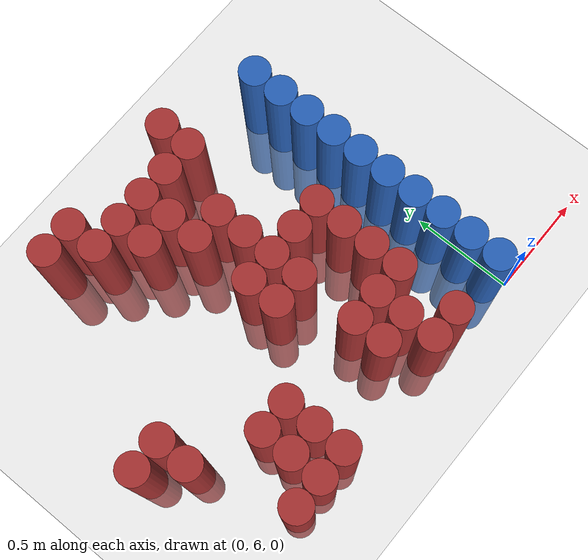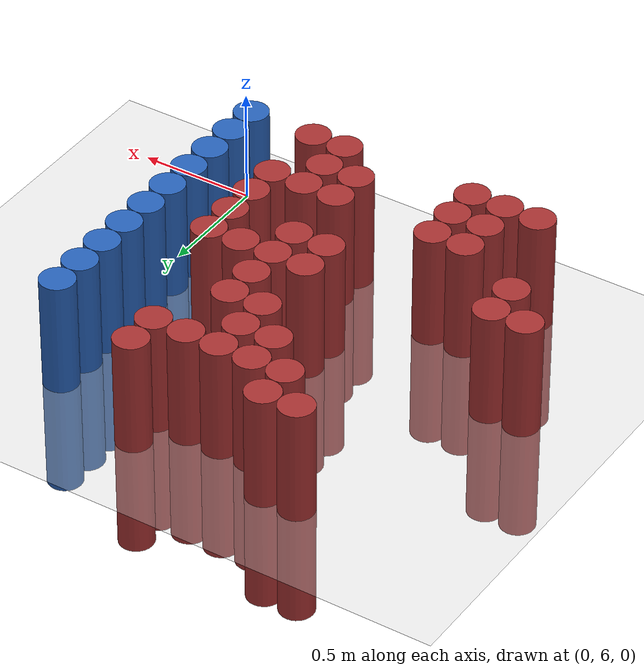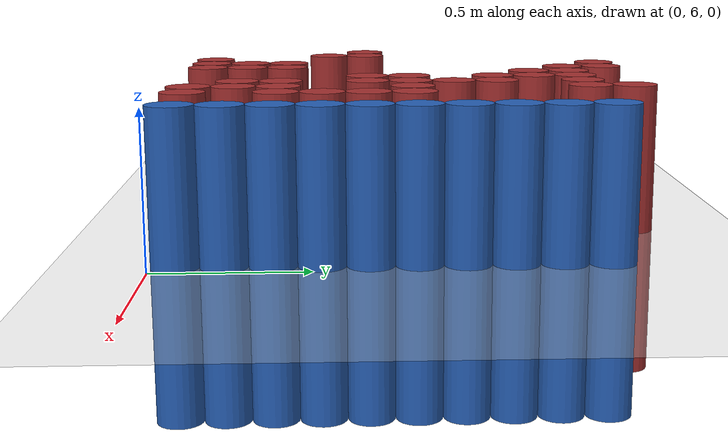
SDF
<sdf version="1.6">
 <world name="default">
  <model name="ground_plane">
   <static>1</static>
   <link name="link">
    <collision name="collision">
     <geometry><plane><normal>0 0 1</normal><size>100 100</size></plane></geometry>
     <surface><friction><ode><mu>100</mu><mu2>50</mu2></ode></friction></surface>
    </collision>
    <visual name="visual">
     <cast_shadows>0</cast_shadows>
     <geometry><plane><normal>0 0 1</normal><size>100 100</size></plane></geometry>
     <material>
      <script><uri>file://media/materials/scripts/gazebo.material</uri><name>Gazebo/Grey</name></script>
     </material>
    </visual>
   </link>
  </model>
  <model name="unit_cylinder_217">
   <static>1</static>
   <pose>-1.725000 6.675000 0.000000 0.000000 0.000000 0.000000</pose>
   <link name="link">
    <inertial>
     <mass>1</mass>
     <inertia><ixx>0.145833</ixx><ixy>0</ixy><ixz>0</ixz><iyy>0.145833</iyy><iyz>0</iyz><izz>0.125</izz></inertia>
    </inertial>
    <collision name="collision">
     <geometry><cylinder><radius>0.075000</radius><length>1</length></cylinder></geometry>
    </collision>
    <visual name="visual">
     <geometry><cylinder><radius>0.075000</radius><length>1</length></cylinder></geometry>
     <material>
      <ambient>0.648000 0.192000 0.192000 1</ambient>
      <diffuse>0.648000 0.192000 0.192000 1</diffuse>
     </material>
     <material>
      <script><name>Gazebo/Grey</name><uri>file://media/materials/scripts/gazebo.material</uri></script>
     </material>
    </visual>
   </link>
  </model>
  <model name="unit_cylinder_220">
   <static>1</static>
   <pose>-1.575000 6.525000 0.000000 0.000000 0.000000 0.000000</pose>
   <link name="link">
    <inertial>
     <mass>1</mass>
     <inertia><ixx>0.145833</ixx><ixy>0</ixy><ixz>0</ixz><iyy>0.145833</iyy><iyz>0</iyz><izz>0.125</izz></inertia>
    </inertial>
    <collision name="collision">
     <geometry><cylinder><radius>0.075000</radius><length>1</length></cylinder></geometry>
    </collision>
    <visual name="visual">
     <geometry><cylinder><radius>0.075000</radius><length>1</length></cylinder></geometry>
     <material>
      <ambient>0.648000 0.192000 0.192000 1</ambient>
      <diffuse>0.648000 0.192000 0.192000 1</diffuse>
     </material>
     <material>
      <script><name>Gazebo/Grey</name><uri>file://media/materials/scripts/gazebo.material</uri></script>
     </material>
    </visual>
   </link>
  </model>
  <model name="unit_cylinder_221">
   <static>1</static>
   <pose>-1.575000 6.675000 0.000000 0.000000 0.000000 0.000000</pose>
   <link name="link">
    <inertial>
     <mass>1</mass>
     <inertia><ixx>0.145833</ixx><ixy>0</ixy><ixz>0</ixz><iyy>0.145833</iyy><iyz>0</iyz><izz>0.125</izz></inertia>
    </inertial>
    <collision name="collision">
     <geometry><cylinder><radius>0.075000</radius><length>1</length></cylinder></geometry>
    </collision>
    <visual name="visual">
     <geometry><cylinder><radius>0.075000</radius><length>1</length></cylinder></geometry>
     <material>
      <ambient>0.648000 0.192000 0.192000 1</ambient>
      <diffuse>0.648000 0.192000 0.192000 1</diffuse>
     </material>
     <material>
      <script><name>Gazebo/Grey</name><uri>file://media/materials/scripts/gazebo.material</uri></script>
     </material>
    </visual>
   </link>
  </model>
  <model name="unit_cylinder_223">
   <static>1</static>
   <pose>-1.425000 6.075000 0.000000 0.000000 0.000000 0.000000</pose>
   <link name="link">
    <inertial>
     <mass>1</mass>
     <inertia><ixx>0.145833</ixx><ixy>0</ixy><ixz>0</ixz><iyy>0.145833</iyy><iyz>0</iyz><izz>0.125</izz></inertia>
    </inertial>
    <collision name="collision">
     <geometry><cylinder><radius>0.075000</radius><length>1</length></cylinder></geometry>
    </collision>
    <visual name="visual">
     <geometry><cylinder><radius>0.075000</radius><length>1</length></cylinder></geometry>
     <material>
      <ambient>0.648000 0.192000 0.192000 1</ambient>
      <diffuse>0.648000 0.192000 0.192000 1</diffuse>
     </material>
     <material>
      <script><name>Gazebo/Grey</name><uri>file://media/materials/scripts/gazebo.material</uri></script>
     </material>
    </visual>
   </link>
  </model>
  <model name="unit_cylinder_230">
   <static>1</static>
   <pose>-1.275000 6.075000 0.000000 0.000000 0.000000 0.000000</pose>
   <link name="link">
    <inertial>
     <mass>1</mass>
     <inertia><ixx>0.145833</ixx><ixy>0</ixy><ixz>0</ixz><iyy>0.145833</iyy><iyz>0</iyz><izz>0.125</izz></inertia>
    </inertial>
    <collision name="collision">
     <geometry><cylinder><radius>0.075000</radius><length>1</length></cylinder></geometry>
    </collision>
    <visual name="visual">
     <geometry><cylinder><radius>0.075000</radius><length>1</length></cylinder></geometry>
     <material>
      <ambient>0.648000 0.192000 0.192000 1</ambient>
      <diffuse>0.648000 0.192000 0.192000 1</diffuse>
     </material>
     <material>
      <script><name>Gazebo/Grey</name><uri>file://media/materials/scripts/gazebo.material</uri></script>
     </material>
    </visual>
   </link>
  </model>
  <model name="unit_cylinder_231">
   <static>1</static>
   <pose>-1.275000 6.225000 0.000000 0.000000 0.000000 0.000000</pose>
   <link name="link">
    <inertial>
     <mass>1</mass>
     <inertia><ixx>0.145833</ixx><ixy>0</ixy><ixz>0</ixz><iyy>0.145833</iyy><iyz>0</iyz><izz>0.125</izz></inertia>
    </inertial>
    <collision name="collision">
     <geometry><cylinder><radius>0.075000</radius><length>1</length></cylinder></geometry>
    </collision>
    <visual name="visual">
     <geometry><cylinder><radius>0.075000</radius><length>1</length></cylinder></geometry>
     <material>
      <ambient>0.648000 0.192000 0.192000 1</ambient>
      <diffuse>0.648000 0.192000 0.192000 1</diffuse>
     </material>
     <material>
      <script><name>Gazebo/Grey</name><uri>file://media/materials/scripts/gazebo.material</uri></script>
     </material>
    </visual>
   </link>
  </model>
  <model name="unit_cylinder_232">
   <static>1</static>
   <pose>-1.275000 6.375000 0.000000 0.000000 0.000000 0.000000</pose>
   <link name="link">
    <inertial>
     <mass>1</mass>
     <inertia><ixx>0.145833</ixx><ixy>0</ixy><ixz>0</ixz><iyy>0.145833</iyy><iyz>0</iyz><izz>0.125</izz></inertia>
    </inertial>
    <collision name="collision">
     <geometry><cylinder><radius>0.075000</radius><length>1</length></cylinder></geometry>
    </collision>
    <visual name="visual">
     <geometry><cylinder><radius>0.075000</radius><length>1</length></cylinder></geometry>
     <material>
      <ambient>0.648000 0.192000 0.192000 1</ambient>
      <diffuse>0.648000 0.192000 0.192000 1</diffuse>
     </material>
     <material>
      <script><name>Gazebo/Grey</name><uri>file://media/materials/scripts/gazebo.material</uri></script>
     </material>
    </visual>
   </link>
  </model>
  <model name="unit_cylinder_233">
   <static>1</static>
   <pose>-1.275000 7.575000 0.000000 0.000000 0.000000 0.000000</pose>
   <link name="link">
    <inertial>
     <mass>1</mass>
     <inertia><ixx>0.145833</ixx><ixy>0</ixy><ixz>0</ixz><iyy>0.145833</iyy><iyz>0</iyz><izz>0.125</izz></inertia>
    </inertial>
    <collision name="collision">
     <geometry><cylinder><radius>0.075000</radius><length>1</length></cylinder></geometry>
    </collision>
    <visual name="visual">
     <geometry><cylinder><radius>0.075000</radius><length>1</length></cylinder></geometry>
     <material>
      <ambient>0.648000 0.192000 0.192000 1</ambient>
      <diffuse>0.648000 0.192000 0.192000 1</diffuse>
     </material>
     <material>
      <script><name>Gazebo/Grey</name><uri>file://media/materials/scripts/gazebo.material</uri></script>
     </material>
    </visual>
   </link>
  </model>
  <model name="unit_cylinder_238">
   <static>1</static>
   <pose>-1.125000 6.075000 0.000000 0.000000 0.000000 0.000000</pose>
   <link name="link">
    <inertial>
     <mass>1</mass>
     <inertia><ixx>0.145833</ixx><ixy>0</ixy><ixz>0</ixz><iyy>0.145833</iyy><iyz>0</iyz><izz>0.125</izz></inertia>
    </inertial>
    <collision name="collision">
     <geometry><cylinder><radius>0.075000</radius><length>1</length></cylinder></geometry>
    </collision>
    <visual name="visual">
     <geometry><cylinder><radius>0.075000</radius><length>1</length></cylinder></geometry>
     <material>
      <ambient>0.648000 0.192000 0.192000 1</ambient>
      <diffuse>0.648000 0.192000 0.192000 1</diffuse>
     </material>
     <material>
      <script><name>Gazebo/Grey</name><uri>file://media/materials/scripts/gazebo.material</uri></script>
     </material>
    </visual>
   </link>
  </model>
  <model name="unit_cylinder_239">
   <static>1</static>
   <pose>-1.125000 6.225000 0.000000 0.000000 0.000000 0.000000</pose>
   <link name="link">
    <inertial>
     <mass>1</mass>
     <inertia><ixx>0.145833</ixx><ixy>0</ixy><ixz>0</ixz><iyy>0.145833</iyy><iyz>0</iyz><izz>0.125</izz></inertia>
    </inertial>
    <collision name="collision">
     <geometry><cylinder><radius>0.075000</radius><length>1</length></cylinder></geometry>
    </collision>
    <visual name="visual">
     <geometry><cylinder><radius>0.075000</radius><length>1</length></cylinder></geometry>
     <material>
      <ambient>0.648000 0.192000 0.192000 1</ambient>
      <diffuse>0.648000 0.192000 0.192000 1</diffuse>
     </material>
     <material>
      <script><name>Gazebo/Grey</name><uri>file://media/materials/scripts/gazebo.material</uri></script>
     </material>
    </visual>
   </link>
  </model>
  <model name="unit_cylinder_240">
   <static>1</static>
   <pose>-1.125000 6.375000 0.000000 0.000000 0.000000 0.000000</pose>
   <link name="link">
    <inertial>
     <mass>1</mass>
     <inertia><ixx>0.145833</ixx><ixy>0</ixy><ixz>0</ixz><iyy>0.145833</iyy><iyz>0</iyz><izz>0.125</izz></inertia>
    </inertial>
    <collision name="collision">
     <geometry><cylinder><radius>0.075000</radius><length>1</length></cylinder></geometry>
    </collision>
    <visual name="visual">
     <geometry><cylinder><radius>0.075000</radius><length>1</length></cylinder></geometry>
     <material>
      <ambient>0.648000 0.192000 0.192000 1</ambient>
      <diffuse>0.648000 0.192000 0.192000 1</diffuse>
     </material>
     <material>
      <script><name>Gazebo/Grey</name><uri>file://media/materials/scripts/gazebo.material</uri></script>
     </material>
    </visual>
   </link>
  </model>
  <model name="unit_cylinder_241">
   <static>1</static>
   <pose>-1.125000 7.425000 0.000000 0.000000 0.000000 0.000000</pose>
   <link name="link">
    <inertial>
     <mass>1</mass>
     <inertia><ixx>0.145833</ixx><ixy>0</ixy><ixz>0</ixz><iyy>0.145833</iyy><iyz>0</iyz><izz>0.125</izz></inertia>
    </inertial>
    <collision name="collision">
     <geometry><cylinder><radius>0.075000</radius><length>1</length></cylinder></geometry>
    </collision>
    <visual name="visual">
     <geometry><cylinder><radius>0.075000</radius><length>1</length></cylinder></geometry>
     <material>
      <ambient>0.648000 0.192000 0.192000 1</ambient>
      <diffuse>0.648000 0.192000 0.192000 1</diffuse>
     </material>
     <material>
      <script><name>Gazebo/Grey</name><uri>file://media/materials/scripts/gazebo.material</uri></script>
     </material>
    </visual>
   </link>
  </model>
  <model name="unit_cylinder_242">
   <static>1</static>
   <pose>-1.125000 7.575000 0.000000 0.000000 0.000000 0.000000</pose>
   <link name="link">
    <inertial>
     <mass>1</mass>
     <inertia><ixx>0.145833</ixx><ixy>0</ixy><ixz>0</ixz><iyy>0.145833</iyy><iyz>0</iyz><izz>0.125</izz></inertia>
    </inertial>
    <collision name="collision">
     <geometry><cylinder><radius>0.075000</radius><length>1</length></cylinder></geometry>
    </collision>
    <visual name="visual">
     <geometry><cylinder><radius>0.075000</radius><length>1</length></cylinder></geometry>
     <material>
      <ambient>0.648000 0.192000 0.192000 1</ambient>
      <diffuse>0.648000 0.192000 0.192000 1</diffuse>
     </material>
     <material>
      <script><name>Gazebo/Grey</name><uri>file://media/materials/scripts/gazebo.material</uri></script>
     </material>
    </visual>
   </link>
  </model>
  <model name="unit_cylinder_251">
   <static>1</static>
   <pose>-0.975000 7.275000 0.000000 0.000000 0.000000 0.000000</pose>
   <link name="link">
    <inertial>
     <mass>1</mass>
     <inertia><ixx>0.145833</ixx><ixy>0</ixy><ixz>0</ixz><iyy>0.145833</iyy><iyz>0</iyz><izz>0.125</izz></inertia>
    </inertial>
    <collision name="collision">
     <geometry><cylinder><radius>0.075000</radius><length>1</length></cylinder></geometry>
    </collision>
    <visual name="visual">
     <geometry><cylinder><radius>0.075000</radius><length>1</length></cylinder></geometry>
     <material>
      <ambient>0.648000 0.192000 0.192000 1</ambient>
      <diffuse>0.648000 0.192000 0.192000 1</diffuse>
     </material>
     <material>
      <script><name>Gazebo/Grey</name><uri>file://media/materials/scripts/gazebo.material</uri></script>
     </material>
    </visual>
   </link>
  </model>
  <model name="unit_cylinder_252">
   <static>1</static>
   <pose>-0.975000 7.425000 0.000000 0.000000 0.000000 0.000000</pose>
   <link name="link">
    <inertial>
     <mass>1</mass>
     <inertia><ixx>0.145833</ixx><ixy>0</ixy><ixz>0</ixz><iyy>0.145833</iyy><iyz>0</iyz><izz>0.125</izz></inertia>
    </inertial>
    <collision name="collision">
     <geometry><cylinder><radius>0.075000</radius><length>1</length></cylinder></geometry>
    </collision>
    <visual name="visual">
     <geometry><cylinder><radius>0.075000</radius><length>1</length></cylinder></geometry>
     <material>
      <ambient>0.648000 0.192000 0.192000 1</ambient>
      <diffuse>0.648000 0.192000 0.192000 1</diffuse>
     </material>
     <material>
      <script><name>Gazebo/Grey</name><uri>file://media/materials/scripts/gazebo.material</uri></script>
     </material>
    </visual>
   </link>
  </model>
  <model name="unit_cylinder_257">
   <static>1</static>
   <pose>-0.825000 6.675000 0.000000 0.000000 0.000000 0.000000</pose>
   <link name="link">
    <inertial>
     <mass>1</mass>
     <inertia><ixx>0.145833</ixx><ixy>0</ixy><ixz>0</ixz><iyy>0.145833</iyy><iyz>0</iyz><izz>0.125</izz></inertia>
    </inertial>
    <collision name="collision">
     <geometry><cylinder><radius>0.075000</radius><length>1</length></cylinder></geometry>
    </collision>
    <visual name="visual">
     <geometry><cylinder><radius>0.075000</radius><length>1</length></cylinder></geometry>
     <material>
      <ambient>0.648000 0.192000 0.192000 1</ambient>
      <diffuse>0.648000 0.192000 0.192000 1</diffuse>
     </material>
     <material>
      <script><name>Gazebo/Grey</name><uri>file://media/materials/scripts/gazebo.material</uri></script>
     </material>
    </visual>
   </link>
  </model>
  <model name="unit_cylinder_258">
   <static>1</static>
   <pose>-0.825000 6.825000 0.000000 0.000000 0.000000 0.000000</pose>
   <link name="link">
    <inertial>
     <mass>1</mass>
     <inertia><ixx>0.145833</ixx><ixy>0</ixy><ixz>0</ixz><iyy>0.145833</iyy><iyz>0</iyz><izz>0.125</izz></inertia>
    </inertial>
    <collision name="collision">
     <geometry><cylinder><radius>0.075000</radius><length>1</length></cylinder></geometry>
    </collision>
    <visual name="visual">
     <geometry><cylinder><radius>0.075000</radius><length>1</length></cylinder></geometry>
     <material>
      <ambient>0.648000 0.192000 0.192000 1</ambient>
      <diffuse>0.648000 0.192000 0.192000 1</diffuse>
     </material>
     <material>
      <script><name>Gazebo/Grey</name><uri>file://media/materials/scripts/gazebo.material</uri></script>
     </material>
    </visual>
   </link>
  </model>
  <model name="unit_cylinder_259">
   <static>1</static>
   <pose>-0.825000 7.125000 0.000000 0.000000 0.000000 0.000000</pose>
   <link name="link">
    <inertial>
     <mass>1</mass>
     <inertia><ixx>0.145833</ixx><ixy>0</ixy><ixz>0</ixz><iyy>0.145833</iyy><iyz>0</iyz><izz>0.125</izz></inertia>
    </inertial>
    <collision name="collision">
     <geometry><cylinder><radius>0.075000</radius><length>1</length></cylinder></geometry>
    </collision>
    <visual name="visual">
     <geometry><cylinder><radius>0.075000</radius><length>1</length></cylinder></geometry>
     <material>
      <ambient>0.648000 0.192000 0.192000 1</ambient>
      <diffuse>0.648000 0.192000 0.192000 1</diffuse>
     </material>
     <material>
      <script><name>Gazebo/Grey</name><uri>file://media/materials/scripts/gazebo.material</uri></script>
     </material>
    </visual>
   </link>
  </model>
  <model name="unit_cylinder_260">
   <static>1</static>
   <pose>-0.825000 7.275000 0.000000 0.000000 0.000000 0.000000</pose>
   <link name="link">
    <inertial>
     <mass>1</mass>
     <inertia><ixx>0.145833</ixx><ixy>0</ixy><ixz>0</ixz><iyy>0.145833</iyy><iyz>0</iyz><izz>0.125</izz></inertia>
    </inertial>
    <collision name="collision">
     <geometry><cylinder><radius>0.075000</radius><length>1</length></cylinder></geometry>
    </collision>
    <visual name="visual">
     <geometry><cylinder><radius>0.075000</radius><length>1</length></cylinder></geometry>
     <material>
      <ambient>0.648000 0.192000 0.192000 1</ambient>
      <diffuse>0.648000 0.192000 0.192000 1</diffuse>
     </material>
     <material>
      <script><name>Gazebo/Grey</name><uri>file://media/materials/scripts/gazebo.material</uri></script>
     </material>
    </visual>
   </link>
  </model>
  <model name="unit_cylinder_261">
   <static>1</static>
   <pose>-0.825000 7.425000 0.000000 0.000000 0.000000 0.000000</pose>
   <link name="link">
    <inertial>
     <mass>1</mass>
     <inertia><ixx>0.145833</ixx><ixy>0</ixy><ixz>0</ixz><iyy>0.145833</iyy><iyz>0</iyz><izz>0.125</izz></inertia>
    </inertial>
    <collision name="collision">
     <geometry><cylinder><radius>0.075000</radius><length>1</length></cylinder></geometry>
    </collision>
    <visual name="visual">
     <geometry><cylinder><radius>0.075000</radius><length>1</length></cylinder></geometry>
     <material>
      <ambient>0.648000 0.192000 0.192000 1</ambient>
      <diffuse>0.648000 0.192000 0.192000 1</diffuse>
     </material>
     <material>
      <script><name>Gazebo/Grey</name><uri>file://media/materials/scripts/gazebo.material</uri></script>
     </material>
    </visual>
   </link>
  </model>
  <model name="unit_cylinder_264">
   <static>1</static>
   <pose>-0.675000 6.225000 0.000000 0.000000 0.000000 0.000000</pose>
   <link name="link">
    <inertial>
     <mass>1</mass>
     <inertia><ixx>0.145833</ixx><ixy>0</ixy><ixz>0</ixz><iyy>0.145833</iyy><iyz>0</iyz><izz>0.125</izz></inertia>
    </inertial>
    <collision name="collision">
     <geometry><cylinder><radius>0.075000</radius><length>1</length></cylinder></geometry>
    </collision>
    <visual name="visual">
     <geometry><cylinder><radius>0.075000</radius><length>1</length></cylinder></geometry>
     <material>
      <ambient>0.648000 0.192000 0.192000 1</ambient>
      <diffuse>0.648000 0.192000 0.192000 1</diffuse>
     </material>
     <material>
      <script><name>Gazebo/Grey</name><uri>file://media/materials/scripts/gazebo.material</uri></script>
     </material>
    </visual>
   </link>
  </model>
  <model name="unit_cylinder_265">
   <static>1</static>
   <pose>-0.675000 6.375000 0.000000 0.000000 0.000000 0.000000</pose>
   <link name="link">
    <inertial>
     <mass>1</mass>
     <inertia><ixx>0.145833</ixx><ixy>0</ixy><ixz>0</ixz><iyy>0.145833</iyy><iyz>0</iyz><izz>0.125</izz></inertia>
    </inertial>
    <collision name="collision">
     <geometry><cylinder><radius>0.075000</radius><length>1</length></cylinder></geometry>
    </collision>
    <visual name="visual">
     <geometry><cylinder><radius>0.075000</radius><length>1</length></cylinder></geometry>
     <material>
      <ambient>0.648000 0.192000 0.192000 1</ambient>
      <diffuse>0.648000 0.192000 0.192000 1</diffuse>
     </material>
     <material>
      <script><name>Gazebo/Grey</name><uri>file://media/materials/scripts/gazebo.material</uri></script>
     </material>
    </visual>
   </link>
  </model>
  <model name="unit_cylinder_266">
   <static>1</static>
   <pose>-0.675000 6.675000 0.000000 0.000000 0.000000 0.000000</pose>
   <link name="link">
    <inertial>
     <mass>1</mass>
     <inertia><ixx>0.145833</ixx><ixy>0</ixy><ixz>0</ixz><iyy>0.145833</iyy><iyz>0</iyz><izz>0.125</izz></inertia>
    </inertial>
    <collision name="collision">
     <geometry><cylinder><radius>0.075000</radius><length>1</length></cylinder></geometry>
    </collision>
    <visual name="visual">
     <geometry><cylinder><radius>0.075000</radius><length>1</length></cylinder></geometry>
     <material>
      <ambient>0.648000 0.192000 0.192000 1</ambient>
      <diffuse>0.648000 0.192000 0.192000 1</diffuse>
     </material>
     <material>
      <script><name>Gazebo/Grey</name><uri>file://media/materials/scripts/gazebo.material</uri></script>
     </material>
    </visual>
   </link>
  </model>
  <model name="unit_cylinder_267">
   <static>1</static>
   <pose>-0.675000 6.825000 0.000000 0.000000 0.000000 0.000000</pose>
   <link name="link">
    <inertial>
     <mass>1</mass>
     <inertia><ixx>0.145833</ixx><ixy>0</ixy><ixz>0</ixz><iyy>0.145833</iyy><iyz>0</iyz><izz>0.125</izz></inertia>
    </inertial>
    <collision name="collision">
     <geometry><cylinder><radius>0.075000</radius><length>1</length></cylinder></geometry>
    </collision>
    <visual name="visual">
     <geometry><cylinder><radius>0.075000</radius><length>1</length></cylinder></geometry>
     <material>
      <ambient>0.648000 0.192000 0.192000 1</ambient>
      <diffuse>0.648000 0.192000 0.192000 1</diffuse>
     </material>
     <material>
      <script><name>Gazebo/Grey</name><uri>file://media/materials/scripts/gazebo.material</uri></script>
     </material>
    </visual>
   </link>
  </model>
  <model name="unit_cylinder_268">
   <static>1</static>
   <pose>-0.675000 6.975000 0.000000 0.000000 0.000000 0.000000</pose>
   <link name="link">
    <inertial>
     <mass>1</mass>
     <inertia><ixx>0.145833</ixx><ixy>0</ixy><ixz>0</ixz><iyy>0.145833</iyy><iyz>0</iyz><izz>0.125</izz></inertia>
    </inertial>
    <collision name="collision">
     <geometry><cylinder><radius>0.075000</radius><length>1</length></cylinder></geometry>
    </collision>
    <visual name="visual">
     <geometry><cylinder><radius>0.075000</radius><length>1</length></cylinder></geometry>
     <material>
      <ambient>0.648000 0.192000 0.192000 1</ambient>
      <diffuse>0.648000 0.192000 0.192000 1</diffuse>
     </material>
     <material>
      <script><name>Gazebo/Grey</name><uri>file://media/materials/scripts/gazebo.material</uri></script>
     </material>
    </visual>
   </link>
  </model>
  <model name="unit_cylinder_269">
   <static>1</static>
   <pose>-0.675000 7.125000 0.000000 0.000000 0.000000 0.000000</pose>
   <link name="link">
    <inertial>
     <mass>1</mass>
     <inertia><ixx>0.145833</ixx><ixy>0</ixy><ixz>0</ixz><iyy>0.145833</iyy><iyz>0</iyz><izz>0.125</izz></inertia>
    </inertial>
    <collision name="collision">
     <geometry><cylinder><radius>0.075000</radius><length>1</length></cylinder></geometry>
    </collision>
    <visual name="visual">
     <geometry><cylinder><radius>0.075000</radius><length>1</length></cylinder></geometry>
     <material>
      <ambient>0.648000 0.192000 0.192000 1</ambient>
      <diffuse>0.648000 0.192000 0.192000 1</diffuse>
     </material>
     <material>
      <script><name>Gazebo/Grey</name><uri>file://media/materials/scripts/gazebo.material</uri></script>
     </material>
    </visual>
   </link>
  </model>
  <model name="unit_cylinder_270">
   <static>1</static>
   <pose>-0.675000 7.425000 0.000000 0.000000 0.000000 0.000000</pose>
   <link name="link">
    <inertial>
     <mass>1</mass>
     <inertia><ixx>0.145833</ixx><ixy>0</ixy><ixz>0</ixz><iyy>0.145833</iyy><iyz>0</iyz><izz>0.125</izz></inertia>
    </inertial>
    <collision name="collision">
     <geometry><cylinder><radius>0.075000</radius><length>1</length></cylinder></geometry>
    </collision>
    <visual name="visual">
     <geometry><cylinder><radius>0.075000</radius><length>1</length></cylinder></geometry>
     <material>
      <ambient>0.648000 0.192000 0.192000 1</ambient>
      <diffuse>0.648000 0.192000 0.192000 1</diffuse>
     </material>
     <material>
      <script><name>Gazebo/Grey</name><uri>file://media/materials/scripts/gazebo.material</uri></script>
     </material>
    </visual>
   </link>
  </model>
  <model name="unit_cylinder_277">
   <static>1</static>
   <pose>-0.525000 6.075000 0.000000 0.000000 0.000000 0.000000</pose>
   <link name="link">
    <inertial>
     <mass>1</mass>
     <inertia><ixx>0.145833</ixx><ixy>0</ixy><ixz>0</ixz><iyy>0.145833</iyy><iyz>0</iyz><izz>0.125</izz></inertia>
    </inertial>
    <collision name="collision">
     <geometry><cylinder><radius>0.075000</radius><length>1</length></cylinder></geometry>
    </collision>
    <visual name="visual">
     <geometry><cylinder><radius>0.075000</radius><length>1</length></cylinder></geometry>
     <material>
      <ambient>0.648000 0.192000 0.192000 1</ambient>
      <diffuse>0.648000 0.192000 0.192000 1</diffuse>
     </material>
     <material>
      <script><name>Gazebo/Grey</name><uri>file://media/materials/scripts/gazebo.material</uri></script>
     </material>
    </visual>
   </link>
  </model>
  <model name="unit_cylinder_278">
   <static>1</static>
   <pose>-0.525000 6.225000 0.000000 0.000000 0.000000 0.000000</pose>
   <link name="link">
    <inertial>
     <mass>1</mass>
     <inertia><ixx>0.145833</ixx><ixy>0</ixy><ixz>0</ixz><iyy>0.145833</iyy><iyz>0</iyz><izz>0.125</izz></inertia>
    </inertial>
    <collision name="collision">
     <geometry><cylinder><radius>0.075000</radius><length>1</length></cylinder></geometry>
    </collision>
    <visual name="visual">
     <geometry><cylinder><radius>0.075000</radius><length>1</length></cylinder></geometry>
     <material>
      <ambient>0.648000 0.192000 0.192000 1</ambient>
      <diffuse>0.648000 0.192000 0.192000 1</diffuse>
     </material>
     <material>
      <script><name>Gazebo/Grey</name><uri>file://media/materials/scripts/gazebo.material</uri></script>
     </material>
    </visual>
   </link>
  </model>
  <model name="unit_cylinder_279">
   <static>1</static>
   <pose>-0.525000 6.375000 0.000000 0.000000 0.000000 0.000000</pose>
   <link name="link">
    <inertial>
     <mass>1</mass>
     <inertia><ixx>0.145833</ixx><ixy>0</ixy><ixz>0</ixz><iyy>0.145833</iyy><iyz>0</iyz><izz>0.125</izz></inertia>
    </inertial>
    <collision name="collision">
     <geometry><cylinder><radius>0.075000</radius><length>1</length></cylinder></geometry>
    </collision>
    <visual name="visual">
     <geometry><cylinder><radius>0.075000</radius><length>1</length></cylinder></geometry>
     <material>
      <ambient>0.648000 0.192000 0.192000 1</ambient>
      <diffuse>0.648000 0.192000 0.192000 1</diffuse>
     </material>
     <material>
      <script><name>Gazebo/Grey</name><uri>file://media/materials/scripts/gazebo.material</uri></script>
     </material>
    </visual>
   </link>
  </model>
  <model name="unit_cylinder_280">
   <static>1</static>
   <pose>-0.525000 6.825000 0.000000 0.000000 0.000000 0.000000</pose>
   <link name="link">
    <inertial>
     <mass>1</mass>
     <inertia><ixx>0.145833</ixx><ixy>0</ixy><ixz>0</ixz><iyy>0.145833</iyy><iyz>0</iyz><izz>0.125</izz></inertia>
    </inertial>
    <collision name="collision">
     <geometry><cylinder><radius>0.075000</radius><length>1</length></cylinder></geometry>
    </collision>
    <visual name="visual">
     <geometry><cylinder><radius>0.075000</radius><length>1</length></cylinder></geometry>
     <material>
      <ambient>0.648000 0.192000 0.192000 1</ambient>
      <diffuse>0.648000 0.192000 0.192000 1</diffuse>
     </material>
     <material>
      <script><name>Gazebo/Grey</name><uri>file://media/materials/scripts/gazebo.material</uri></script>
     </material>
    </visual>
   </link>
  </model>
  <model name="unit_cylinder_281">
   <static>1</static>
   <pose>-0.525000 7.425000 0.000000 0.000000 0.000000 0.000000</pose>
   <link name="link">
    <inertial>
     <mass>1</mass>
     <inertia><ixx>0.145833</ixx><ixy>0</ixy><ixz>0</ixz><iyy>0.145833</iyy><iyz>0</iyz><izz>0.125</izz></inertia>
    </inertial>
    <collision name="collision">
     <geometry><cylinder><radius>0.075000</radius><length>1</length></cylinder></geometry>
    </collision>
    <visual name="visual">
     <geometry><cylinder><radius>0.075000</radius><length>1</length></cylinder></geometry>
     <material>
      <ambient>0.648000 0.192000 0.192000 1</ambient>
      <diffuse>0.648000 0.192000 0.192000 1</diffuse>
     </material>
     <material>
      <script><name>Gazebo/Grey</name><uri>file://media/materials/scripts/gazebo.material</uri></script>
     </material>
    </visual>
   </link>
  </model>
  <model name="unit_cylinder_282">
   <static>1</static>
   <pose>-0.525000 7.575000 0.000000 0.000000 0.000000 0.000000</pose>
   <link name="link">
    <inertial>
     <mass>1</mass>
     <inertia><ixx>0.145833</ixx><ixy>0</ixy><ixz>0</ixz><iyy>0.145833</iyy><iyz>0</iyz><izz>0.125</izz></inertia>
    </inertial>
    <collision name="collision">
     <geometry><cylinder><radius>0.075000</radius><length>1</length></cylinder></geometry>
    </collision>
    <visual name="visual">
     <geometry><cylinder><radius>0.075000</radius><length>1</length></cylinder></geometry>
     <material>
      <ambient>0.648000 0.192000 0.192000 1</ambient>
      <diffuse>0.648000 0.192000 0.192000 1</diffuse>
     </material>
     <material>
      <script><name>Gazebo/Grey</name><uri>file://media/materials/scripts/gazebo.material</uri></script>
     </material>
    </visual>
   </link>
  </model>
  <model name="unit_cylinder_291">
   <static>1</static>
   <pose>-0.375000 6.075000 0.000000 0.000000 0.000000 0.000000</pose>
   <link name="link">
    <inertial>
     <mass>1</mass>
     <inertia><ixx>0.145833</ixx><ixy>0</ixy><ixz>0</ixz><iyy>0.145833</iyy><iyz>0</iyz><izz>0.125</izz></inertia>
    </inertial>
    <collision name="collision">
     <geometry><cylinder><radius>0.075000</radius><length>1</length></cylinder></geometry>
    </collision>
    <visual name="visual">
     <geometry><cylinder><radius>0.075000</radius><length>1</length></cylinder></geometry>
     <material>
      <ambient>0.648000 0.192000 0.192000 1</ambient>
      <diffuse>0.648000 0.192000 0.192000 1</diffuse>
     </material>
     <material>
      <script><name>Gazebo/Grey</name><uri>file://media/materials/scripts/gazebo.material</uri></script>
     </material>
    </visual>
   </link>
  </model>
  <model name="unit_cylinder_292">
   <static>1</static>
   <pose>-0.375000 6.375000 0.000000 0.000000 0.000000 0.000000</pose>
   <link name="link">
    <inertial>
     <mass>1</mass>
     <inertia><ixx>0.145833</ixx><ixy>0</ixy><ixz>0</ixz><iyy>0.145833</iyy><iyz>0</iyz><izz>0.125</izz></inertia>
    </inertial>
    <collision name="collision">
     <geometry><cylinder><radius>0.075000</radius><length>1</length></cylinder></geometry>
    </collision>
    <visual name="visual">
     <geometry><cylinder><radius>0.075000</radius><length>1</length></cylinder></geometry>
     <material>
      <ambient>0.648000 0.192000 0.192000 1</ambient>
      <diffuse>0.648000 0.192000 0.192000 1</diffuse>
     </material>
     <material>
      <script><name>Gazebo/Grey</name><uri>file://media/materials/scripts/gazebo.material</uri></script>
     </material>
    </visual>
   </link>
  </model>
  <model name="unit_cylinder_293">
   <static>1</static>
   <pose>-0.375000 6.525000 0.000000 0.000000 0.000000 0.000000</pose>
   <link name="link">
    <inertial>
     <mass>1</mass>
     <inertia><ixx>0.145833</ixx><ixy>0</ixy><ixz>0</ixz><iyy>0.145833</iyy><iyz>0</iyz><izz>0.125</izz></inertia>
    </inertial>
    <collision name="collision">
     <geometry><cylinder><radius>0.075000</radius><length>1</length></cylinder></geometry>
    </collision>
    <visual name="visual">
     <geometry><cylinder><radius>0.075000</radius><length>1</length></cylinder></geometry>
     <material>
      <ambient>0.648000 0.192000 0.192000 1</ambient>
      <diffuse>0.648000 0.192000 0.192000 1</diffuse>
     </material>
     <material>
      <script><name>Gazebo/Grey</name><uri>file://media/materials/scripts/gazebo.material</uri></script>
     </material>
    </visual>
   </link>
  </model>
  <model name="unit_cylinder_294">
   <static>1</static>
   <pose>-0.375000 6.675000 0.000000 0.000000 0.000000 0.000000</pose>
   <link name="link">
    <inertial>
     <mass>1</mass>
     <inertia><ixx>0.145833</ixx><ixy>0</ixy><ixz>0</ixz><iyy>0.145833</iyy><iyz>0</iyz><izz>0.125</izz></inertia>
    </inertial>
    <collision name="collision">
     <geometry><cylinder><radius>0.075000</radius><length>1</length></cylinder></geometry>
    </collision>
    <visual name="visual">
     <geometry><cylinder><radius>0.075000</radius><length>1</length></cylinder></geometry>
     <material>
      <ambient>0.648000 0.192000 0.192000 1</ambient>
      <diffuse>0.648000 0.192000 0.192000 1</diffuse>
     </material>
     <material>
      <script><name>Gazebo/Grey</name><uri>file://media/materials/scripts/gazebo.material</uri></script>
     </material>
    </visual>
   </link>
  </model>
  <model name="unit_cylinder_295">
   <static>1</static>
   <pose>-0.375000 6.825000 0.000000 0.000000 0.000000 0.000000</pose>
   <link name="link">
    <inertial>
     <mass>1</mass>
     <inertia><ixx>0.145833</ixx><ixy>0</ixy><ixz>0</ixz><iyy>0.145833</iyy><iyz>0</iyz><izz>0.125</izz></inertia>
    </inertial>
    <collision name="collision">
     <geometry><cylinder><radius>0.075000</radius><length>1</length></cylinder></geometry>
    </collision>
    <visual name="visual">
     <geometry><cylinder><radius>0.075000</radius><length>1</length></cylinder></geometry>
     <material>
      <ambient>0.648000 0.192000 0.192000 1</ambient>
      <diffuse>0.648000 0.192000 0.192000 1</diffuse>
     </material>
     <material>
      <script><name>Gazebo/Grey</name><uri>file://media/materials/scripts/gazebo.material</uri></script>
     </material>
    </visual>
   </link>
  </model>
  <model name="unit_cylinder_312">
   <static>1</static>
   <pose>-0.075000 6.075000 0.000000 0.000000 0.000000 0.000000</pose>
   <link name="link">
    <inertial>
     <mass>1</mass>
     <inertia><ixx>0.145833</ixx><ixy>0</ixy><ixz>0</ixz><iyy>0.145833</iyy><iyz>0</iyz><izz>0.125</izz></inertia>
    </inertial>
    <collision name="collision">
     <geometry><cylinder><radius>0.075000</radius><length>1</length></cylinder></geometry>
    </collision>
    <visual name="visual">
     <geometry><cylinder><radius>0.075000</radius><length>1</length></cylinder></geometry>
     <material>
      <ambient>0.152000 0.379000 0.720000 1</ambient>
      <diffuse>0.152000 0.379000 0.720000 1</diffuse>
     </material>
     <material>
      <script><name>Gazebo/Grey</name><uri>file://media/materials/scripts/gazebo.material</uri></script>
     </material>
    </visual>
   </link>
  </model>
  <model name="unit_cylinder_313">
   <static>1</static>
   <pose>-0.075000 6.225000 0.000000 0.000000 0.000000 0.000000</pose>
   <link name="link">
    <inertial>
     <mass>1</mass>
     <inertia><ixx>0.145833</ixx><ixy>0</ixy><ixz>0</ixz><iyy>0.145833</iyy><iyz>0</iyz><izz>0.125</izz></inertia>
    </inertial>
    <collision name="collision">
     <geometry><cylinder><radius>0.075000</radius><length>1</length></cylinder></geometry>
    </collision>
    <visual name="visual">
     <geometry><cylinder><radius>0.075000</radius><length>1</length></cylinder></geometry>
     <material>
      <ambient>0.152000 0.379000 0.720000 1</ambient>
      <diffuse>0.152000 0.379000 0.720000 1</diffuse>
     </material>
     <material>
      <script><name>Gazebo/Grey</name><uri>file://media/materials/scripts/gazebo.material</uri></script>
     </material>
    </visual>
   </link>
  </model>
  <model name="unit_cylinder_314">
   <static>1</static>
   <pose>-0.075000 6.375000 0.000000 0.000000 0.000000 0.000000</pose>
   <link name="link">
    <inertial>
     <mass>1</mass>
     <inertia><ixx>0.145833</ixx><ixy>0</ixy><ixz>0</ixz><iyy>0.145833</iyy><iyz>0</iyz><izz>0.125</izz></inertia>
    </inertial>
    <collision name="collision">
     <geometry><cylinder><radius>0.075000</radius><length>1</length></cylinder></geometry>
    </collision>
    <visual name="visual">
     <geometry><cylinder><radius>0.075000</radius><length>1</length></cylinder></geometry>
     <material>
      <ambient>0.152000 0.379000 0.720000 1</ambient>
      <diffuse>0.152000 0.379000 0.720000 1</diffuse>
     </material>
     <material>
      <script><name>Gazebo/Grey</name><uri>file://media/materials/scripts/gazebo.material</uri></script>
     </material>
    </visual>
   </link>
  </model>
  <model name="unit_cylinder_315">
   <static>1</static>
   <pose>-0.075000 6.525000 0.000000 0.000000 0.000000 0.000000</pose>
   <link name="link">
    <inertial>
     <mass>1</mass>
     <inertia><ixx>0.145833</ixx><ixy>0</ixy><ixz>0</ixz><iyy>0.145833</iyy><iyz>0</iyz><izz>0.125</izz></inertia>
    </inertial>
    <collision name="collision">
     <geometry><cylinder><radius>0.075000</radius><length>1</length></cylinder></geometry>
    </collision>
    <visual name="visual">
     <geometry><cylinder><radius>0.075000</radius><length>1</length></cylinder></geometry>
     <material>
      <ambient>0.152000 0.379000 0.720000 1</ambient>
      <diffuse>0.152000 0.379000 0.720000 1</diffuse>
     </material>
     <material>
      <script><name>Gazebo/Grey</name><uri>file://media/materials/scripts/gazebo.material</uri></script>
     </material>
    </visual>
   </link>
  </model>
  <model name="unit_cylinder_316">
   <static>1</static>
   <pose>-0.075000 6.675000 0.000000 0.000000 0.000000 0.000000</pose>
   <link name="link">
    <inertial>
     <mass>1</mass>
     <inertia><ixx>0.145833</ixx><ixy>0</ixy><ixz>0</ixz><iyy>0.145833</iyy><iyz>0</iyz><izz>0.125</izz></inertia>
    </inertial>
    <collision name="collision">
     <geometry><cylinder><radius>0.075000</radius><length>1</length></cylinder></geometry>
    </collision>
    <visual name="visual">
     <geometry><cylinder><radius>0.075000</radius><length>1</length></cylinder></geometry>
     <material>
      <ambient>0.152000 0.379000 0.720000 1</ambient>
      <diffuse>0.152000 0.379000 0.720000 1</diffuse>
     </material>
     <material>
      <script><name>Gazebo/Grey</name><uri>file://media/materials/scripts/gazebo.material</uri></script>
     </material>
    </visual>
   </link>
  </model>
  <model name="unit_cylinder_317">
   <static>1</static>
   <pose>-0.075000 6.825000 0.000000 0.000000 0.000000 0.000000</pose>
   <link name="link">
    <inertial>
     <mass>1</mass>
     <inertia><ixx>0.145833</ixx><ixy>0</ixy><ixz>0</ixz><iyy>0.145833</iyy><iyz>0</iyz><izz>0.125</izz></inertia>
    </inertial>
    <collision name="collision">
     <geometry><cylinder><radius>0.075000</radius><length>1</length></cylinder></geometry>
    </collision>
    <visual name="visual">
     <geometry><cylinder><radius>0.075000</radius><length>1</length></cylinder></geometry>
     <material>
      <ambient>0.152000 0.379000 0.720000 1</ambient>
      <diffuse>0.152000 0.379000 0.720000 1</diffuse>
     </material>
     <material>
      <script><name>Gazebo/Grey</name><uri>file://media/materials/scripts/gazebo.material</uri></script>
     </material>
    </visual>
   </link>
  </model>
  <model name="unit_cylinder_318">
   <static>1</static>
   <pose>-0.075000 6.975000 0.000000 0.000000 0.000000 0.000000</pose>
   <link name="link">
    <inertial>
     <mass>1</mass>
     <inertia><ixx>0.145833</ixx><ixy>0</ixy><ixz>0</ixz><iyy>0.145833</iyy><iyz>0</iyz><izz>0.125</izz></inertia>
    </inertial>
    <collision name="collision">
     <geometry><cylinder><radius>0.075000</radius><length>1</length></cylinder></geometry>
    </collision>
    <visual name="visual">
     <geometry><cylinder><radius>0.075000</radius><length>1</length></cylinder></geometry>
     <material>
      <ambient>0.152000 0.379000 0.720000 1</ambient>
      <diffuse>0.152000 0.379000 0.720000 1</diffuse>
     </material>
     <material>
      <script><name>Gazebo/Grey</name><uri>file://media/materials/scripts/gazebo.material</uri></script>
     </material>
    </visual>
   </link>
  </model>
  <model name="unit_cylinder_319">
   <static>1</static>
   <pose>-0.075000 7.125000 0.000000 0.000000 0.000000 0.000000</pose>
   <link name="link">
    <inertial>
     <mass>1</mass>
     <inertia><ixx>0.145833</ixx><ixy>0</ixy><ixz>0</ixz><iyy>0.145833</iyy><iyz>0</iyz><izz>0.125</izz></inertia>
    </inertial>
    <collision name="collision">
     <geometry><cylinder><radius>0.075000</radius><length>1</length></cylinder></geometry>
    </collision>
    <visual name="visual">
     <geometry><cylinder><radius>0.075000</radius><length>1</length></cylinder></geometry>
     <material>
      <ambient>0.152000 0.379000 0.720000 1</ambient>
      <diffuse>0.152000 0.379000 0.720000 1</diffuse>
     </material>
     <material>
      <script><name>Gazebo/Grey</name><uri>file://media/materials/scripts/gazebo.material</uri></script>
     </material>
    </visual>
   </link>
  </model>
  <model name="unit_cylinder_320">
   <static>1</static>
   <pose>-0.075000 7.275000 0.000000 0.000000 0.000000 0.000000</pose>
   <link name="link">
    <inertial>
     <mass>1</mass>
     <inertia><ixx>0.145833</ixx><ixy>0</ixy><ixz>0</ixz><iyy>0.145833</iyy><iyz>0</iyz><izz>0.125</izz></inertia>
    </inertial>
    <collision name="collision">
     <geometry><cylinder><radius>0.075000</radius><length>1</length></cylinder></geometry>
    </collision>
    <visual name="visual">
     <geometry><cylinder><radius>0.075000</radius><length>1</length></cylinder></geometry>
     <material>
      <ambient>0.152000 0.379000 0.720000 1</ambient>
      <diffuse>0.152000 0.379000 0.720000 1</diffuse>
     </material>
     <material>
      <script><name>Gazebo/Grey</name><uri>file://media/materials/scripts/gazebo.material</uri></script>
     </material>
    </visual>
   </link>
  </model>
  <model name="unit_cylinder_321">
   <static>1</static>
   <pose>-0.075000 7.425000 0.000000 0.000000 0.000000 0.000000</pose>
   <link name="link">
    <inertial>
     <mass>1</mass>
     <inertia><ixx>0.145833</ixx><ixy>0</ixy><ixz>0</ixz><iyy>0.145833</iyy><iyz>0</iyz><izz>0.125</izz></inertia>
    </inertial>
    <collision name="collision">
     <geometry><cylinder><radius>0.075000</radius><length>1</length></cylinder></geometry>
    </collision>
    <visual name="visual">
     <geometry><cylinder><radius>0.075000</radius><length>1</length></cylinder></geometry>
     <material>
      <ambient>0.152000 0.379000 0.720000 1</ambient>
      <diffuse>0.152000 0.379000 0.720000 1</diffuse>
     </material>
     <material>
      <script><name>Gazebo/Grey</name><uri>file://media/materials/scripts/gazebo.material</uri></script>
     </material>
    </visual>
   </link>
  </model>
 </world>
</sdf>
